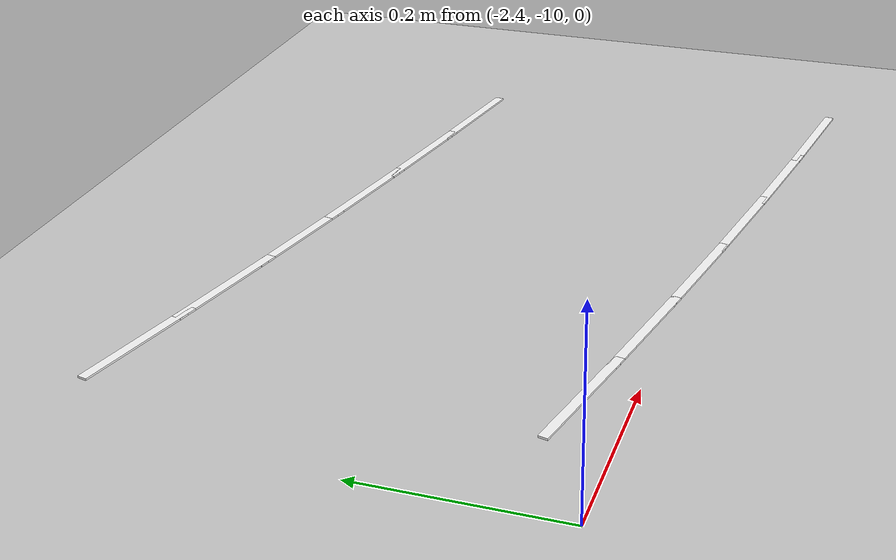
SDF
<sdf version="1.7">
 <world name="default">
  <model name="ground_plane">
   <static>1</static>
   <link name="link">
    <collision name="collision">
     <geometry><plane><normal>0 0 1</normal><size>100 100</size></plane></geometry>
     <surface>
      <contact><collide_bitmask>65535</collide_bitmask></contact>
      <friction><ode><mu>100</mu><mu2>50</mu2></ode></friction>
     </surface>
    </collision>
    <visual name="visual">
     <cast_shadows>0</cast_shadows>
     <geometry><plane><normal>0 0 1</normal><size>100 100</size></plane></geometry>
     <material>
      <script><uri>file://media/materials/scripts/gazebo.material</uri><name>Gazebo/Grey</name></script>
     </material>
    </visual>
   </link>
  </model>
  <model name="lane_line_left_356">
   <static>1</static>
   <link name="link">
    <pose>0 0 -0.004 0 -0 0</pose>
    <visual name="visual">
     <geometry><box><size>0.1457 0.01 0.01</size></box></geometry>
     <material><ambient>1 1 1 1</ambient><diffuse>1 1 1 1</diffuse></material>
    </visual>
    <collision name="collision"><geometry><box><size>0.1457 0.01 0.01</size></box></geometry></collision>
   </link>
   <pose>-2.25777 -9.53617 0 0 0 -0.232478</pose>
  </model>
  <model name="lane_line_left_357">
   <static>1</static>
   <link name="link">
    <pose>0 0 -0.004 0 -0 0</pose>
    <visual name="visual">
     <geometry><box><size>0.1457 0.01 0.01</size></box></geometry>
     <material><ambient>1 1 1 1</ambient><diffuse>1 1 1 1</diffuse></material>
    </visual>
    <collision name="collision"><geometry><box><size>0.1457 0.01 0.01</size></box></geometry></collision>
   </link>
   <pose>-2.13776 -9.56379 0 0 0 -0.219911</pose>
  </model>
  <model name="lane_line_right_357">
   <static>1</static>
   <link name="link">
    <pose>0 0 -0.004 0 -0 0</pose>
    <visual name="visual">
     <geometry><box><size>0.1457 0.01 0.01</size></box></geometry>
     <material><ambient>1 1 1 1</ambient><diffuse>1 1 1 1</diffuse></material>
    </visual>
    <collision name="collision"><geometry><box><size>0.1457 0.01 0.01</size></box></geometry></collision>
   </link>
   <pose>-2.22502 -9.95416 0 0 0 -0.219911</pose>
  </model>
  <model name="lane_line_left_358">
   <static>1</static>
   <link name="link">
    <pose>0 0 -0.004 0 -0 0</pose>
    <visual name="visual">
     <geometry><box><size>0.1457 0.01 0.01</size></box></geometry>
     <material><ambient>1 1 1 1</ambient><diffuse>1 1 1 1</diffuse></material>
    </visual>
    <collision name="collision"><geometry><box><size>0.1457 0.01 0.01</size></box></geometry></collision>
   </link>
   <pose>-2.01741 -9.5899 0 0 0 -0.207345</pose>
  </model>
  <model name="lane_line_right_358">
   <static>1</static>
   <link name="link">
    <pose>0 0 -0.004 0 -0 0</pose>
    <visual name="visual">
     <geometry><box><size>0.1457 0.01 0.01</size></box></geometry>
     <material><ambient>1 1 1 1</ambient><diffuse>1 1 1 1</diffuse></material>
    </visual>
    <collision name="collision"><geometry><box><size>0.1457 0.01 0.01</size></box></geometry></collision>
   </link>
   <pose>-2.09976 -9.98133 0 0 0 -0.207345</pose>
  </model>
  <model name="lane_line_left_359">
   <static>1</static>
   <link name="link">
    <pose>0 0 -0.004 0 -0 0</pose>
    <visual name="visual">
     <geometry><box><size>0.1457 0.01 0.01</size></box></geometry>
     <material><ambient>1 1 1 1</ambient><diffuse>1 1 1 1</diffuse></material>
    </visual>
    <collision name="collision"><geometry><box><size>0.1457 0.01 0.01</size></box></geometry></collision>
   </link>
   <pose>-1.89675 -9.61449 0 0 0 -0.194779</pose>
  </model>
  <model name="lane_line_right_359">
   <static>1</static>
   <link name="link">
    <pose>0 0 -0.004 0 -0 0</pose>
    <visual name="visual">
     <geometry><box><size>0.1457 0.01 0.01</size></box></geometry>
     <material><ambient>1 1 1 1</ambient><diffuse>1 1 1 1</diffuse></material>
    </visual>
    <collision name="collision"><geometry><box><size>0.1457 0.01 0.01</size></box></geometry></collision>
   </link>
   <pose>-1.97417 -10.0069 0 0 0 -0.194779</pose>
  </model>
  <model name="lane_line_left_360">
   <static>1</static>
   <link name="link">
    <pose>0 0 -0.004 0 -0 0</pose>
    <visual name="visual">
     <geometry><box><size>0.1457 0.01 0.01</size></box></geometry>
     <material><ambient>1 1 1 1</ambient><diffuse>1 1 1 1</diffuse></material>
    </visual>
    <collision name="collision"><geometry><box><size>0.1457 0.01 0.01</size></box></geometry></collision>
   </link>
   <pose>-1.77578 -9.63757 0 0 0 -0.182212</pose>
  </model>
  <model name="lane_line_right_360">
   <static>1</static>
   <link name="link">
    <pose>0 0 -0.004 0 -0 0</pose>
    <visual name="visual">
     <geometry><box><size>0.1457 0.01 0.01</size></box></geometry>
     <material><ambient>1 1 1 1</ambient><diffuse>1 1 1 1</diffuse></material>
    </visual>
    <collision name="collision"><geometry><box><size>0.1457 0.01 0.01</size></box></geometry></collision>
   </link>
   <pose>-1.84826 -10.0309 0 0 0 -0.182212</pose>
  </model>
  <model name="lane_line_left_361">
   <static>1</static>
   <link name="link">
    <pose>0 0 -0.004 0 -0 0</pose>
    <visual name="visual">
     <geometry><box><size>0.1457 0.01 0.01</size></box></geometry>
     <material><ambient>1 1 1 1</ambient><diffuse>1 1 1 1</diffuse></material>
    </visual>
    <collision name="collision"><geometry><box><size>0.1457 0.01 0.01</size></box></geometry></collision>
   </link>
   <pose>-1.65453 -9.65912 0 0 0 -0.169646</pose>
  </model>
  <model name="lane_line_right_361">
   <static>1</static>
   <link name="link">
    <pose>0 0 -0.004 0 -0 0</pose>
    <visual name="visual">
     <geometry><box><size>0.1457 0.01 0.01</size></box></geometry>
     <material><ambient>1 1 1 1</ambient><diffuse>1 1 1 1</diffuse></material>
    </visual>
    <collision name="collision"><geometry><box><size>0.1457 0.01 0.01</size></box></geometry></collision>
   </link>
   <pose>-1.72207 -10.0534 0 0 0 -0.169646</pose>
  </model>
  <model name="lane_line_right_362">
   <static>1</static>
   <link name="link">
    <pose>0 0 -0.004 0 -0 0</pose>
    <visual name="visual">
     <geometry><box><size>0.1457 0.01 0.01</size></box></geometry>
     <material><ambient>1 1 1 1</ambient><diffuse>1 1 1 1</diffuse></material>
    </visual>
    <collision name="collision"><geometry><box><size>0.1457 0.01 0.01</size></box></geometry></collision>
   </link>
   <pose>-1.5956 -10.0742 0 0 0 -0.15708</pose>
  </model>
 </world>
</sdf>
